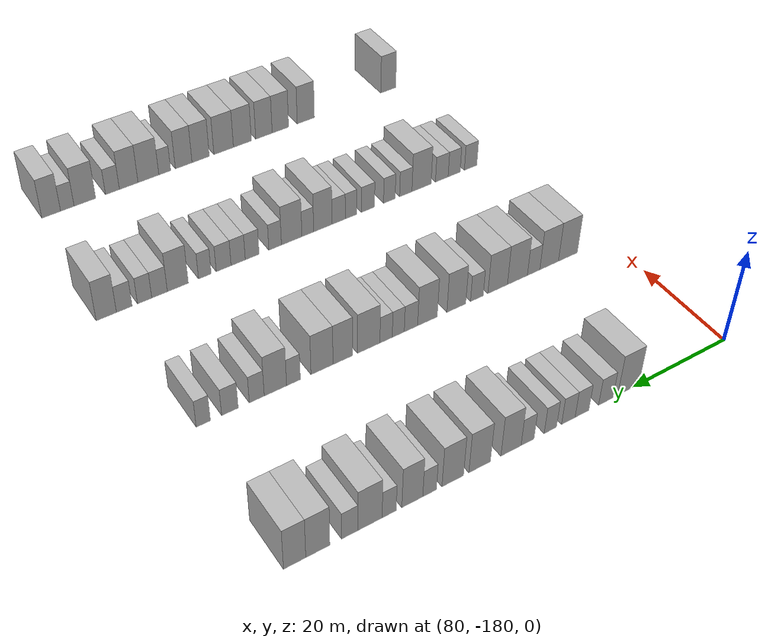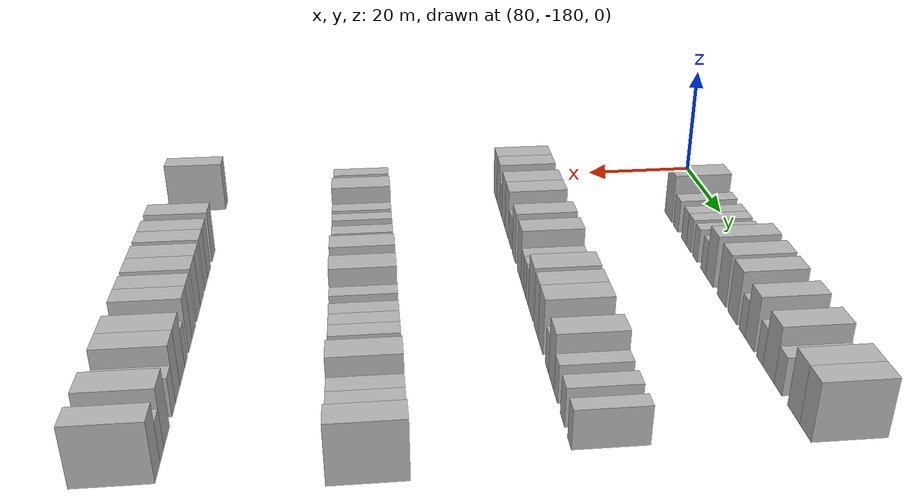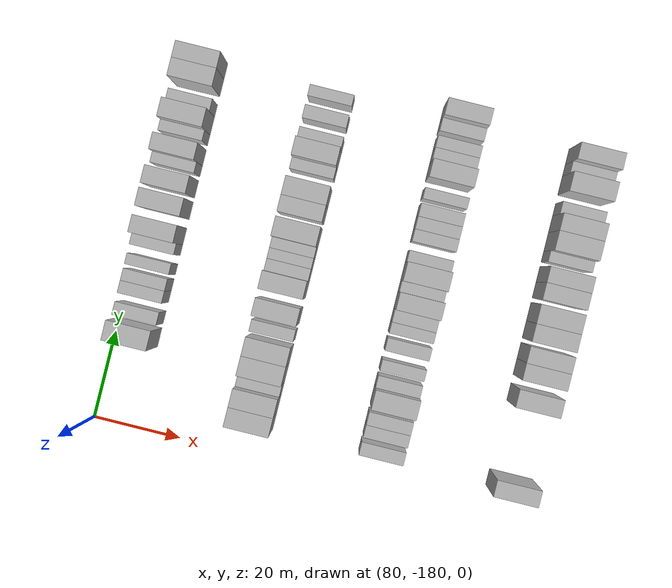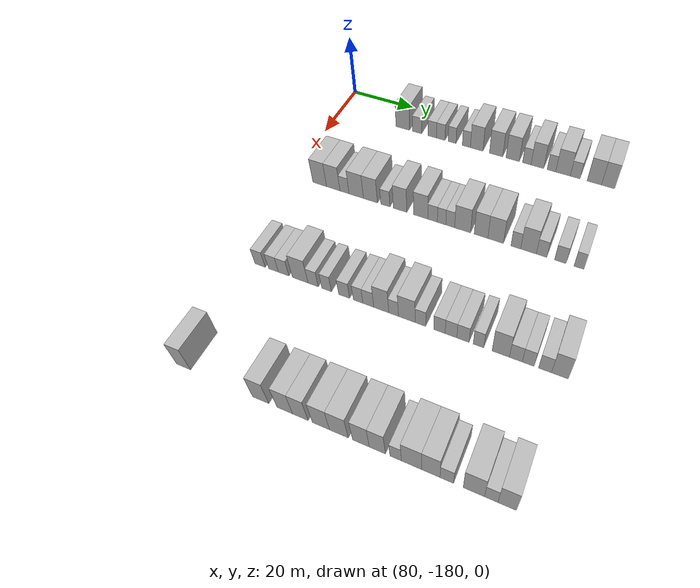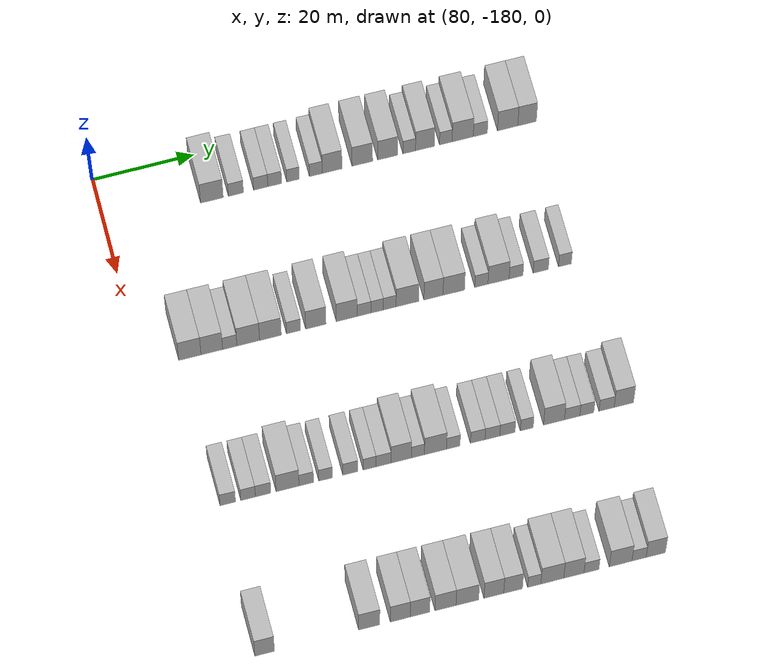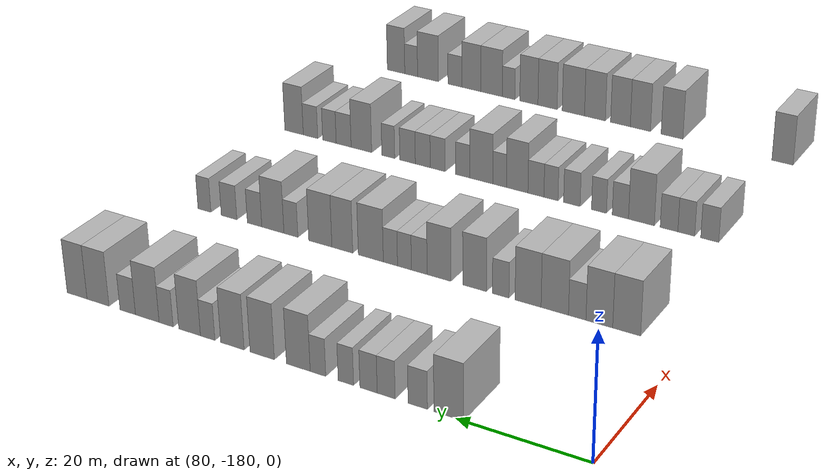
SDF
<sdf version="1.6">
 <world name="default">
  <model name="building_529">
   <static>1</static>
   <pose>85.0000 -158.9531 0 0.000000 0.000000 0.000000</pose>
   <link name="link">
    <pose>0 0 4.50 0 0 0</pose>
    <collision name="collision"><geometry><box><size>10.0000 4.4648 9.0000</size></box></geometry></collision>
    <visual name="visual">
     <cast_shadows>0</cast_shadows>
     <geometry><box><size>10.0000 4.4648 9.0000</size></box></geometry>
     <material>
      <script>
       <uri>model://HANNAS_wall/materials/scripts</uri>
       <uri>model://HANNAS_wall/materials/textures</uri>
       <name>vrc/HANNAS_wall</name>
      </script>
     </material>
    </visual>
   </link>
  </model>
  <model name="building_530">
   <static>1</static>
   <pose>85.0000 -154.2374 0 0.000000 0.000000 0.000000</pose>
   <link name="link">
    <pose>0 0 3.00 0 0 0</pose>
    <collision name="collision"><geometry><box><size>10.0000 2.9667 6.0000</size></box></geometry></collision>
    <visual name="visual">
     <cast_shadows>0</cast_shadows>
     <geometry><box><size>10.0000 2.9667 6.0000</size></box></geometry>
     <material>
      <script>
       <uri>model://HANNAS_wall/materials/scripts</uri>
       <uri>model://HANNAS_wall/materials/textures</uri>
       <name>vrc/HANNAS_wall</name>
      </script>
     </material>
    </visual>
   </link>
  </model>
  <model name="building_531">
   <static>1</static>
   <pose>85.0000 -149.3541 0 0.000000 0.000000 0.000000</pose>
   <link name="link">
    <pose>0 0 3.00 0 0 0</pose>
    <collision name="collision"><geometry><box><size>10.0000 2.7998 6.0000</size></box></geometry></collision>
    <visual name="visual">
     <cast_shadows>0</cast_shadows>
     <geometry><box><size>10.0000 2.7998 6.0000</size></box></geometry>
     <material>
      <script>
       <uri>model://HANNAS_wall/materials/scripts</uri>
       <uri>model://HANNAS_wall/materials/textures</uri>
       <name>vrc/HANNAS_wall</name>
      </script>
     </material>
    </visual>
   </link>
  </model>
  <model name="building_532">
   <static>1</static>
   <pose>85.0000 -146.5910 0 0.000000 0.000000 0.000000</pose>
   <link name="link">
    <pose>0 0 3.00 0 0 0</pose>
    <collision name="collision"><geometry><box><size>10.0000 2.7264 6.0000</size></box></geometry></collision>
    <visual name="visual">
     <cast_shadows>0</cast_shadows>
     <geometry><box><size>10.0000 2.7264 6.0000</size></box></geometry>
     <material>
      <script>
       <uri>model://HANNAS_wall/materials/scripts</uri>
       <uri>model://HANNAS_wall/materials/textures</uri>
       <name>vrc/HANNAS_wall</name>
      </script>
     </material>
    </visual>
   </link>
  </model>
  <model name="building_533">
   <static>1</static>
   <pose>85.0000 -142.9979 0 0.000000 0.000000 0.000000</pose>
   <link name="link">
    <pose>0 0 3.00 0 0 0</pose>
    <collision name="collision"><geometry><box><size>10.0000 2.4598 6.0000</size></box></geometry></collision>
    <visual name="visual">
     <cast_shadows>0</cast_shadows>
     <geometry><box><size>10.0000 2.4598 6.0000</size></box></geometry>
     <material>
      <script>
       <uri>model://HANNAS_wall/materials/scripts</uri>
       <uri>model://HANNAS_wall/materials/textures</uri>
       <name>vrc/HANNAS_wall</name>
      </script>
     </material>
    </visual>
   </link>
  </model>
  <model name="building_534">
   <static>1</static>
   <pose>85.0000 -138.5042 0 0.000000 0.000000 0.000000</pose>
   <link name="link">
    <pose>0 0 3.00 0 0 0</pose>
    <collision name="collision"><geometry><box><size>10.0000 2.5276 6.0000</size></box></geometry></collision>
    <visual name="visual">
     <cast_shadows>0</cast_shadows>
     <geometry><box><size>10.0000 2.5276 6.0000</size></box></geometry>
     <material>
      <script>
       <uri>model://HANNAS_wall/materials/scripts</uri>
       <uri>model://HANNAS_wall/materials/textures</uri>
       <name>vrc/HANNAS_wall</name>
      </script>
     </material>
    </visual>
   </link>
  </model>
  <model name="building_535">
   <static>1</static>
   <pose>85.0000 -135.2942 0 0.000000 0.000000 0.000000</pose>
   <link name="link">
    <pose>0 0 4.50 0 0 0</pose>
    <collision name="collision"><geometry><box><size>10.0000 3.8924 9.0000</size></box></geometry></collision>
    <visual name="visual">
     <cast_shadows>0</cast_shadows>
     <geometry><box><size>10.0000 3.8924 9.0000</size></box></geometry>
     <material>
      <script>
       <uri>model://HANNAS_wall/materials/scripts</uri>
       <uri>model://HANNAS_wall/materials/textures</uri>
       <name>vrc/HANNAS_wall</name>
      </script>
     </material>
    </visual>
   </link>
  </model>
  <model name="building_536">
   <static>1</static>
   <pose>85.0000 -129.3194 0 0.000000 0.000000 0.000000</pose>
   <link name="link">
    <pose>0 0 4.50 0 0 0</pose>
    <collision name="collision"><geometry><box><size>10.0000 4.0571 9.0000</size></box></geometry></collision>
    <visual name="visual">
     <cast_shadows>0</cast_shadows>
     <geometry><box><size>10.0000 4.0571 9.0000</size></box></geometry>
     <material>
      <script>
       <uri>model://HANNAS_wall/materials/scripts</uri>
       <uri>model://HANNAS_wall/materials/textures</uri>
       <name>vrc/HANNAS_wall</name>
      </script>
     </material>
    </visual>
   </link>
  </model>
  <model name="building_537">
   <static>1</static>
   <pose>85.0000 -124.2990 0 0.000000 0.000000 0.000000</pose>
   <link name="link">
    <pose>0 0 4.50 0 0 0</pose>
    <collision name="collision"><geometry><box><size>10.0000 3.9837 9.0000</size></box></geometry></collision>
    <visual name="visual">
     <cast_shadows>0</cast_shadows>
     <geometry><box><size>10.0000 3.9837 9.0000</size></box></geometry>
     <material>
      <script>
       <uri>model://HANNAS_wall/materials/scripts</uri>
       <uri>model://HANNAS_wall/materials/textures</uri>
       <name>vrc/HANNAS_wall</name>
      </script>
     </material>
    </visual>
   </link>
  </model>
  <model name="building_538">
   <static>1</static>
   <pose>85.0000 -120.0617 0 0.000000 0.000000 0.000000</pose>
   <link name="link">
    <pose>0 0 3.00 0 0 0</pose>
    <collision name="collision"><geometry><box><size>10.0000 2.4909 6.0000</size></box></geometry></collision>
    <visual name="visual">
     <cast_shadows>0</cast_shadows>
     <geometry><box><size>10.0000 2.4909 6.0000</size></box></geometry>
     <material>
      <script>
       <uri>model://HANNAS_wall/materials/scripts</uri>
       <uri>model://HANNAS_wall/materials/textures</uri>
       <name>vrc/HANNAS_wall</name>
      </script>
     </material>
    </visual>
   </link>
  </model>
  <model name="building_539">
   <static>1</static>
   <pose>85.0000 -116.9331 0 0.000000 0.000000 0.000000</pose>
   <link name="link">
    <pose>0 0 4.50 0 0 0</pose>
    <collision name="collision"><geometry><box><size>10.0000 3.7665 9.0000</size></box></geometry></collision>
    <visual name="visual">
     <cast_shadows>0</cast_shadows>
     <geometry><box><size>10.0000 3.7665 9.0000</size></box></geometry>
     <material>
      <script>
       <uri>model://HANNAS_wall/materials/scripts</uri>
       <uri>model://HANNAS_wall/materials/textures</uri>
       <name>vrc/HANNAS_wall</name>
      </script>
     </material>
    </visual>
   </link>
  </model>
  <model name="building_540">
   <static>1</static>
   <pose>85.0000 -112.8073 0 0.000000 0.000000 0.000000</pose>
   <link name="link">
    <pose>0 0 3.00 0 0 0</pose>
    <collision name="collision"><geometry><box><size>10.0000 2.4851 6.0000</size></box></geometry></collision>
    <visual name="visual">
     <cast_shadows>0</cast_shadows>
     <geometry><box><size>10.0000 2.4851 6.0000</size></box></geometry>
     <material>
      <script>
       <uri>model://HANNAS_wall/materials/scripts</uri>
       <uri>model://HANNAS_wall/materials/textures</uri>
       <name>vrc/HANNAS_wall</name>
      </script>
     </material>
    </visual>
   </link>
  </model>
  <model name="building_541">
   <static>1</static>
   <pose>85.0000 -109.4571 0 0.000000 0.000000 0.000000</pose>
   <link name="link">
    <pose>0 0 4.50 0 0 0</pose>
    <collision name="collision"><geometry><box><size>10.0000 4.2154 9.0000</size></box></geometry></collision>
    <visual name="visual">
     <cast_shadows>0</cast_shadows>
     <geometry><box><size>10.0000 4.2154 9.0000</size></box></geometry>
     <material>
      <script>
       <uri>model://HANNAS_wall/materials/scripts</uri>
       <uri>model://HANNAS_wall/materials/textures</uri>
       <name>vrc/HANNAS_wall</name>
      </script>
     </material>
    </visual>
   </link>
  </model>
  <model name="building_542">
   <static>1</static>
   <pose>85.0000 -105.9527 0 0.000000 0.000000 0.000000</pose>
   <link name="link">
    <pose>0 0 3.00 0 0 0</pose>
    <collision name="collision"><geometry><box><size>10.0000 2.7935 6.0000</size></box></geometry></collision>
    <visual name="visual">
     <cast_shadows>0</cast_shadows>
     <geometry><box><size>10.0000 2.7935 6.0000</size></box></geometry>
     <material>
      <script>
       <uri>model://HANNAS_wall/materials/scripts</uri>
       <uri>model://HANNAS_wall/materials/textures</uri>
       <name>vrc/HANNAS_wall</name>
      </script>
     </material>
    </visual>
   </link>
  </model>
  <model name="building_543">
   <static>1</static>
   <pose>85.0000 -100.5369 0 0.000000 0.000000 0.000000</pose>
   <link name="link">
    <pose>0 0 4.50 0 0 0</pose>
    <collision name="collision"><geometry><box><size>10.0000 4.0379 9.0000</size></box></geometry></collision>
    <visual name="visual">
     <cast_shadows>0</cast_shadows>
     <geometry><box><size>10.0000 4.0379 9.0000</size></box></geometry>
     <material>
      <script>
       <uri>model://HANNAS_wall/materials/scripts</uri>
       <uri>model://HANNAS_wall/materials/textures</uri>
       <name>vrc/HANNAS_wall</name>
      </script>
     </material>
    </visual>
   </link>
  </model>
  <model name="building_544">
   <static>1</static>
   <pose>85.0000 -96.6738 0 0.000000 0.000000 0.000000</pose>
   <link name="link">
    <pose>0 0 4.50 0 0 0</pose>
    <collision name="collision"><geometry><box><size>10.0000 3.6883 9.0000</size></box></geometry></collision>
    <visual name="visual">
     <cast_shadows>0</cast_shadows>
     <geometry><box><size>10.0000 3.6883 9.0000</size></box></geometry>
     <material>
      <script>
       <uri>model://HANNAS_wall/materials/scripts</uri>
       <uri>model://HANNAS_wall/materials/textures</uri>
       <name>vrc/HANNAS_wall</name>
      </script>
     </material>
    </visual>
   </link>
  </model>
  <model name="building_744">
   <static>1</static>
   <pose>115.0000 -170.7787 0 0.000000 0.000000 0.000000</pose>
   <link name="link">
    <pose>0 0 4.50 0 0 0</pose>
    <collision name="collision"><geometry><box><size>10.0000 4.3260 9.0000</size></box></geometry></collision>
    <visual name="visual">
     <cast_shadows>0</cast_shadows>
     <geometry><box><size>10.0000 4.3260 9.0000</size></box></geometry>
     <material>
      <script>
       <uri>model://HANNAS_wall/materials/scripts</uri>
       <uri>model://HANNAS_wall/materials/textures</uri>
       <name>vrc/HANNAS_wall</name>
      </script>
     </material>
    </visual>
   </link>
  </model>
  <model name="building_745">
   <static>1</static>
   <pose>115.0000 -166.5169 0 0.000000 0.000000 0.000000</pose>
   <link name="link">
    <pose>0 0 4.50 0 0 0</pose>
    <collision name="collision"><geometry><box><size>10.0000 4.1974 9.0000</size></box></geometry></collision>
    <visual name="visual">
     <cast_shadows>0</cast_shadows>
     <geometry><box><size>10.0000 4.1974 9.0000</size></box></geometry>
     <material>
      <script>
       <uri>model://HANNAS_wall/materials/scripts</uri>
       <uri>model://HANNAS_wall/materials/textures</uri>
       <name>vrc/HANNAS_wall</name>
      </script>
     </material>
    </visual>
   </link>
  </model>
  <model name="building_746">
   <static>1</static>
   <pose>115.0000 -163.0311 0 0.000000 0.000000 0.000000</pose>
   <link name="link">
    <pose>0 0 3.00 0 0 0</pose>
    <collision name="collision"><geometry><box><size>10.0000 2.7743 6.0000</size></box></geometry></collision>
    <visual name="visual">
     <cast_shadows>0</cast_shadows>
     <geometry><box><size>10.0000 2.7743 6.0000</size></box></geometry>
     <material>
      <script>
       <uri>model://HANNAS_wall/materials/scripts</uri>
       <uri>model://HANNAS_wall/materials/textures</uri>
       <name>vrc/HANNAS_wall</name>
      </script>
     </material>
    </visual>
   </link>
  </model>
  <model name="building_747">
   <static>1</static>
   <pose>115.0000 -159.4424 0 0.000000 0.000000 0.000000</pose>
   <link name="link">
    <pose>0 0 4.50 0 0 0</pose>
    <collision name="collision"><geometry><box><size>10.0000 4.4031 9.0000</size></box></geometry></collision>
    <visual name="visual">
     <cast_shadows>0</cast_shadows>
     <geometry><box><size>10.0000 4.4031 9.0000</size></box></geometry>
     <material>
      <script>
       <uri>model://HANNAS_wall/materials/scripts</uri>
       <uri>model://HANNAS_wall/materials/textures</uri>
       <name>vrc/HANNAS_wall</name>
      </script>
     </material>
    </visual>
   </link>
  </model>
  <model name="building_748">
   <static>1</static>
   <pose>115.0000 -155.1202 0 0.000000 0.000000 0.000000</pose>
   <link name="link">
    <pose>0 0 4.50 0 0 0</pose>
    <collision name="collision"><geometry><box><size>10.0000 4.2414 9.0000</size></box></geometry></collision>
    <visual name="visual">
     <cast_shadows>0</cast_shadows>
     <geometry><box><size>10.0000 4.2414 9.0000</size></box></geometry>
     <material>
      <script>
       <uri>model://HANNAS_wall/materials/scripts</uri>
       <uri>model://HANNAS_wall/materials/textures</uri>
       <name>vrc/HANNAS_wall</name>
      </script>
     </material>
    </visual>
   </link>
  </model>
  <model name="building_749">
   <static>1</static>
   <pose>115.0000 -150.6361 0 0.000000 0.000000 0.000000</pose>
   <link name="link">
    <pose>0 0 3.00 0 0 0</pose>
    <collision name="collision"><geometry><box><size>10.0000 2.7268 6.0000</size></box></geometry></collision>
    <visual name="visual">
     <cast_shadows>0</cast_shadows>
     <geometry><box><size>10.0000 2.7268 6.0000</size></box></geometry>
     <material>
      <script>
       <uri>model://HANNAS_wall/materials/scripts</uri>
       <uri>model://HANNAS_wall/materials/textures</uri>
       <name>vrc/HANNAS_wall</name>
      </script>
     </material>
    </visual>
   </link>
  </model>
  <model name="building_750">
   <static>1</static>
   <pose>115.0000 -146.2840 0 0.000000 0.000000 0.000000</pose>
   <link name="link">
    <pose>0 0 4.50 0 0 0</pose>
    <collision name="collision"><geometry><box><size>10.0000 3.9774 9.0000</size></box></geometry></collision>
    <visual name="visual">
     <cast_shadows>0</cast_shadows>
     <geometry><box><size>10.0000 3.9774 9.0000</size></box></geometry>
     <material>
      <script>
       <uri>model://HANNAS_wall/materials/scripts</uri>
       <uri>model://HANNAS_wall/materials/textures</uri>
       <name>vrc/HANNAS_wall</name>
      </script>
     </material>
    </visual>
   </link>
  </model>
  <model name="building_751">
   <static>1</static>
   <pose>115.0000 -140.2692 0 0.000000 0.000000 0.000000</pose>
   <link name="link">
    <pose>0 0 4.50 0 0 0</pose>
    <collision name="collision"><geometry><box><size>10.0000 4.0522 9.0000</size></box></geometry></collision>
    <visual name="visual">
     <cast_shadows>0</cast_shadows>
     <geometry><box><size>10.0000 4.0522 9.0000</size></box></geometry>
     <material>
      <script>
       <uri>model://HANNAS_wall/materials/scripts</uri>
       <uri>model://HANNAS_wall/materials/textures</uri>
       <name>vrc/HANNAS_wall</name>
      </script>
     </material>
    </visual>
   </link>
  </model>
  <model name="building_752">
   <static>1</static>
   <pose>115.0000 -136.8821 0 0.000000 0.000000 0.000000</pose>
   <link name="link">
    <pose>0 0 3.00 0 0 0</pose>
    <collision name="collision"><geometry><box><size>10.0000 2.7218 6.0000</size></box></geometry></collision>
    <visual name="visual">
     <cast_shadows>0</cast_shadows>
     <geometry><box><size>10.0000 2.7218 6.0000</size></box></geometry>
     <material>
      <script>
       <uri>model://HANNAS_wall/materials/scripts</uri>
       <uri>model://HANNAS_wall/materials/textures</uri>
       <name>vrc/HANNAS_wall</name>
      </script>
     </material>
    </visual>
   </link>
  </model>
  <model name="building_753">
   <static>1</static>
   <pose>115.0000 -134.3090 0 0.000000 0.000000 0.000000</pose>
   <link name="link">
    <pose>0 0 3.00 0 0 0</pose>
    <collision name="collision"><geometry><box><size>10.0000 2.4244 6.0000</size></box></geometry></collision>
    <visual name="visual">
     <cast_shadows>0</cast_shadows>
     <geometry><box><size>10.0000 2.4244 6.0000</size></box></geometry>
     <material>
      <script>
       <uri>model://HANNAS_wall/materials/scripts</uri>
       <uri>model://HANNAS_wall/materials/textures</uri>
       <name>vrc/HANNAS_wall</name>
      </script>
     </material>
    </visual>
   </link>
  </model>
  <model name="building_754">
   <static>1</static>
   <pose>115.0000 -131.8560 0 0.000000 0.000000 0.000000</pose>
   <link name="link">
    <pose>0 0 3.00 0 0 0</pose>
    <collision name="collision"><geometry><box><size>10.0000 2.4816 6.0000</size></box></geometry></collision>
    <visual name="visual">
     <cast_shadows>0</cast_shadows>
     <geometry><box><size>10.0000 2.4816 6.0000</size></box></geometry>
     <material>
      <script>
       <uri>model://HANNAS_wall/materials/scripts</uri>
       <uri>model://HANNAS_wall/materials/textures</uri>
       <name>vrc/HANNAS_wall</name>
      </script>
     </material>
    </visual>
   </link>
  </model>
  <model name="building_755">
   <static>1</static>
   <pose>115.0000 -128.3996 0 0.000000 0.000000 0.000000</pose>
   <link name="link">
    <pose>0 0 4.50 0 0 0</pose>
    <collision name="collision"><geometry><box><size>10.0000 4.4310 9.0000</size></box></geometry></collision>
    <visual name="visual">
     <cast_shadows>0</cast_shadows>
     <geometry><box><size>10.0000 4.4310 9.0000</size></box></geometry>
     <material>
      <script>
       <uri>model://HANNAS_wall/materials/scripts</uri>
       <uri>model://HANNAS_wall/materials/textures</uri>
       <name>vrc/HANNAS_wall</name>
      </script>
     </material>
    </visual>
   </link>
  </model>
  <model name="building_756">
   <static>1</static>
   <pose>115.0000 -123.3061 0 0.000000 0.000000 0.000000</pose>
   <link name="link">
    <pose>0 0 4.50 0 0 0</pose>
    <collision name="collision"><geometry><box><size>10.0000 3.7559 9.0000</size></box></geometry></collision>
    <visual name="visual">
     <cast_shadows>0</cast_shadows>
     <geometry><box><size>10.0000 3.7559 9.0000</size></box></geometry>
     <material>
      <script>
       <uri>model://HANNAS_wall/materials/scripts</uri>
       <uri>model://HANNAS_wall/materials/textures</uri>
       <name>vrc/HANNAS_wall</name>
      </script>
     </material>
    </visual>
   </link>
  </model>
  <model name="building_757">
   <static>1</static>
   <pose>115.0000 -119.3221 0 0.000000 0.000000 0.000000</pose>
   <link name="link">
    <pose>0 0 4.50 0 0 0</pose>
    <collision name="collision"><geometry><box><size>10.0000 4.2121 9.0000</size></box></geometry></collision>
    <visual name="visual">
     <cast_shadows>0</cast_shadows>
     <geometry><box><size>10.0000 4.2121 9.0000</size></box></geometry>
     <material>
      <script>
       <uri>model://HANNAS_wall/materials/scripts</uri>
       <uri>model://HANNAS_wall/materials/textures</uri>
       <name>vrc/HANNAS_wall</name>
      </script>
     </material>
    </visual>
   </link>
  </model>
  <model name="building_758">
   <static>1</static>
   <pose>115.0000 -113.9204 0 0.000000 0.000000 0.000000</pose>
   <link name="link">
    <pose>0 0 3.00 0 0 0</pose>
    <collision name="collision"><geometry><box><size>10.0000 2.5913 6.0000</size></box></geometry></collision>
    <visual name="visual">
     <cast_shadows>0</cast_shadows>
     <geometry><box><size>10.0000 2.5913 6.0000</size></box></geometry>
     <material>
      <script>
       <uri>model://HANNAS_wall/materials/scripts</uri>
       <uri>model://HANNAS_wall/materials/textures</uri>
       <name>vrc/HANNAS_wall</name>
      </script>
     </material>
    </visual>
   </link>
  </model>
  <model name="building_759">
   <static>1</static>
   <pose>115.0000 -110.5528 0 0.000000 0.000000 0.000000</pose>
   <link name="link">
    <pose>0 0 4.50 0 0 0</pose>
    <collision name="collision"><geometry><box><size>10.0000 4.1439 9.0000</size></box></geometry></collision>
    <visual name="visual">
     <cast_shadows>0</cast_shadows>
     <geometry><box><size>10.0000 4.1439 9.0000</size></box></geometry>
     <material>
      <script>
       <uri>model://HANNAS_wall/materials/scripts</uri>
       <uri>model://HANNAS_wall/materials/textures</uri>
       <name>vrc/HANNAS_wall</name>
      </script>
     </material>
    </visual>
   </link>
  </model>
  <model name="building_760">
   <static>1</static>
   <pose>115.0000 -107.1139 0 0.000000 0.000000 0.000000</pose>
   <link name="link">
    <pose>0 0 3.00 0 0 0</pose>
    <collision name="collision"><geometry><box><size>10.0000 2.7340 6.0000</size></box></geometry></collision>
    <visual name="visual">
     <cast_shadows>0</cast_shadows>
     <geometry><box><size>10.0000 2.7340 6.0000</size></box></geometry>
     <material>
      <script>
       <uri>model://HANNAS_wall/materials/scripts</uri>
       <uri>model://HANNAS_wall/materials/textures</uri>
       <name>vrc/HANNAS_wall</name>
      </script>
     </material>
    </visual>
   </link>
  </model>
  <model name="building_761">
   <static>1</static>
   <pose>115.0000 -102.2560 0 0.000000 0.000000 0.000000</pose>
   <link name="link">
    <pose>0 0 3.00 0 0 0</pose>
    <collision name="collision"><geometry><box><size>10.0000 2.9818 6.0000</size></box></geometry></collision>
    <visual name="visual">
     <cast_shadows>0</cast_shadows>
     <geometry><box><size>10.0000 2.9818 6.0000</size></box></geometry>
     <material>
      <script>
       <uri>model://HANNAS_wall/materials/scripts</uri>
       <uri>model://HANNAS_wall/materials/textures</uri>
       <name>vrc/HANNAS_wall</name>
      </script>
     </material>
    </visual>
   </link>
  </model>
  <model name="building_762">
   <static>1</static>
   <pose>115.0000 -97.5097 0 0.000000 0.000000 0.000000</pose>
   <link name="link">
    <pose>0 0 3.00 0 0 0</pose>
    <collision name="collision"><geometry><box><size>10.0000 2.5108 6.0000</size></box></geometry></collision>
    <visual name="visual">
     <cast_shadows>0</cast_shadows>
     <geometry><box><size>10.0000 2.5108 6.0000</size></box></geometry>
     <material>
      <script>
       <uri>model://HANNAS_wall/materials/scripts</uri>
       <uri>model://HANNAS_wall/materials/textures</uri>
       <name>vrc/HANNAS_wall</name>
      </script>
     </material>
    </visual>
   </link>
  </model>
  <model name="building_985">
   <static>1</static>
   <pose>145.0000 -170.9920 0 0.000000 0.000000 0.000000</pose>
   <link name="link">
    <pose>0 0 3.00 0 0 0</pose>
    <collision name="collision"><geometry><box><size>10.0000 2.9756 6.0000</size></box></geometry></collision>
    <visual name="visual">
     <cast_shadows>0</cast_shadows>
     <geometry><box><size>10.0000 2.9756 6.0000</size></box></geometry>
     <material>
      <script>
       <uri>model://HANNAS_wall/materials/scripts</uri>
       <uri>model://HANNAS_wall/materials/textures</uri>
       <name>vrc/HANNAS_wall</name>
      </script>
     </material>
    </visual>
   </link>
  </model>
  <model name="building_986">
   <static>1</static>
   <pose>145.0000 -167.0946 0 0.000000 0.000000 0.000000</pose>
   <link name="link">
    <pose>0 0 3.00 0 0 0</pose>
    <collision name="collision"><geometry><box><size>10.0000 2.8192 6.0000</size></box></geometry></collision>
    <visual name="visual">
     <cast_shadows>0</cast_shadows>
     <geometry><box><size>10.0000 2.8192 6.0000</size></box></geometry>
     <material>
      <script>
       <uri>model://HANNAS_wall/materials/scripts</uri>
       <uri>model://HANNAS_wall/materials/textures</uri>
       <name>vrc/HANNAS_wall</name>
      </script>
     </material>
    </visual>
   </link>
  </model>
  <model name="building_987">
   <static>1</static>
   <pose>145.0000 -164.1999 0 0.000000 0.000000 0.000000</pose>
   <link name="link">
    <pose>0 0 3.00 0 0 0</pose>
    <collision name="collision"><geometry><box><size>10.0000 2.9701 6.0000</size></box></geometry></collision>
    <visual name="visual">
     <cast_shadows>0</cast_shadows>
     <geometry><box><size>10.0000 2.9701 6.0000</size></box></geometry>
     <material>
      <script>
       <uri>model://HANNAS_wall/materials/scripts</uri>
       <uri>model://HANNAS_wall/materials/textures</uri>
       <name>vrc/HANNAS_wall</name>
      </script>
     </material>
    </visual>
   </link>
  </model>
  <model name="building_988">
   <static>1</static>
   <pose>145.0000 -159.5084 0 0.000000 0.000000 0.000000</pose>
   <link name="link">
    <pose>0 0 4.50 0 0 0</pose>
    <collision name="collision"><geometry><box><size>10.0000 4.4130 9.0000</size></box></geometry></collision>
    <visual name="visual">
     <cast_shadows>0</cast_shadows>
     <geometry><box><size>10.0000 4.4130 9.0000</size></box></geometry>
     <material>
      <script>
       <uri>model://HANNAS_wall/materials/scripts</uri>
       <uri>model://HANNAS_wall/materials/textures</uri>
       <name>vrc/HANNAS_wall</name>
      </script>
     </material>
    </visual>
   </link>
  </model>
  <model name="building_989">
   <static>1</static>
   <pose>145.0000 -155.8990 0 0.000000 0.000000 0.000000</pose>
   <link name="link">
    <pose>0 0 3.00 0 0 0</pose>
    <collision name="collision"><geometry><box><size>10.0000 2.8058 6.0000</size></box></geometry></collision>
    <visual name="visual">
     <cast_shadows>0</cast_shadows>
     <geometry><box><size>10.0000 2.8058 6.0000</size></box></geometry>
     <material>
      <script>
       <uri>model://HANNAS_wall/materials/scripts</uri>
       <uri>model://HANNAS_wall/materials/textures</uri>
       <name>vrc/HANNAS_wall</name>
      </script>
     </material>
    </visual>
   </link>
  </model>
  <model name="building_990">
   <static>1</static>
   <pose>145.0000 -152.1863 0 0.000000 0.000000 0.000000</pose>
   <link name="link">
    <pose>0 0 3.00 0 0 0</pose>
    <collision name="collision"><geometry><box><size>10.0000 2.6195 6.0000</size></box></geometry></collision>
    <visual name="visual">
     <cast_shadows>0</cast_shadows>
     <geometry><box><size>10.0000 2.6195 6.0000</size></box></geometry>
     <material>
      <script>
       <uri>model://HANNAS_wall/materials/scripts</uri>
       <uri>model://HANNAS_wall/materials/textures</uri>
       <name>vrc/HANNAS_wall</name>
      </script>
     </material>
    </visual>
   </link>
  </model>
  <model name="building_991">
   <static>1</static>
   <pose>145.0000 -147.4154 0 0.000000 0.000000 0.000000</pose>
   <link name="link">
    <pose>0 0 3.00 0 0 0</pose>
    <collision name="collision"><geometry><box><size>10.0000 2.9224 6.0000</size></box></geometry></collision>
    <visual name="visual">
     <cast_shadows>0</cast_shadows>
     <geometry><box><size>10.0000 2.9224 6.0000</size></box></geometry>
     <material>
      <script>
       <uri>model://HANNAS_wall/materials/scripts</uri>
       <uri>model://HANNAS_wall/materials/textures</uri>
       <name>vrc/HANNAS_wall</name>
      </script>
     </material>
    </visual>
   </link>
  </model>
  <model name="building_992">
   <static>1</static>
   <pose>145.0000 -143.6935 0 0.000000 0.000000 0.000000</pose>
   <link name="link">
    <pose>0 0 3.00 0 0 0</pose>
    <collision name="collision"><geometry><box><size>10.0000 2.5215 6.0000</size></box></geometry></collision>
    <visual name="visual">
     <cast_shadows>0</cast_shadows>
     <geometry><box><size>10.0000 2.5215 6.0000</size></box></geometry>
     <material>
      <script>
       <uri>model://HANNAS_wall/materials/scripts</uri>
       <uri>model://HANNAS_wall/materials/textures</uri>
       <name>vrc/HANNAS_wall</name>
      </script>
     </material>
    </visual>
   </link>
  </model>
  <model name="building_993">
   <static>1</static>
   <pose>145.0000 -140.9936 0 0.000000 0.000000 0.000000</pose>
   <link name="link">
    <pose>0 0 3.00 0 0 0</pose>
    <collision name="collision"><geometry><box><size>10.0000 2.8783 6.0000</size></box></geometry></collision>
    <visual name="visual">
     <cast_shadows>0</cast_shadows>
     <geometry><box><size>10.0000 2.8783 6.0000</size></box></geometry>
     <material>
      <script>
       <uri>model://HANNAS_wall/materials/scripts</uri>
       <uri>model://HANNAS_wall/materials/textures</uri>
       <name>vrc/HANNAS_wall</name>
      </script>
     </material>
    </visual>
   </link>
  </model>
  <model name="building_994">
   <static>1</static>
   <pose>145.0000 -137.5903 0 0.000000 0.000000 0.000000</pose>
   <link name="link">
    <pose>0 0 4.50 0 0 0</pose>
    <collision name="collision"><geometry><box><size>10.0000 3.9283 9.0000</size></box></geometry></collision>
    <visual name="visual">
     <cast_shadows>0</cast_shadows>
     <geometry><box><size>10.0000 3.9283 9.0000</size></box></geometry>
     <material>
      <script>
       <uri>model://HANNAS_wall/materials/scripts</uri>
       <uri>model://HANNAS_wall/materials/textures</uri>
       <name>vrc/HANNAS_wall</name>
      </script>
     </material>
    </visual>
   </link>
  </model>
  <model name="building_995">
   <static>1</static>
   <pose>145.0000 -134.3747 0 0.000000 0.000000 0.000000</pose>
   <link name="link">
    <pose>0 0 3.00 0 0 0</pose>
    <collision name="collision"><geometry><box><size>10.0000 2.5031 6.0000</size></box></geometry></collision>
    <visual name="visual">
     <cast_shadows>0</cast_shadows>
     <geometry><box><size>10.0000 2.5031 6.0000</size></box></geometry>
     <material>
      <script>
       <uri>model://HANNAS_wall/materials/scripts</uri>
       <uri>model://HANNAS_wall/materials/textures</uri>
       <name>vrc/HANNAS_wall</name>
      </script>
     </material>
    </visual>
   </link>
  </model>
  <model name="building_996">
   <static>1</static>
   <pose>145.0000 -130.9794 0 0.000000 0.000000 0.000000</pose>
   <link name="link">
    <pose>0 0 4.50 0 0 0</pose>
    <collision name="collision"><geometry><box><size>10.0000 4.2873 9.0000</size></box></geometry></collision>
    <visual name="visual">
     <cast_shadows>0</cast_shadows>
     <geometry><box><size>10.0000 4.2873 9.0000</size></box></geometry>
     <material>
      <script>
       <uri>model://HANNAS_wall/materials/scripts</uri>
       <uri>model://HANNAS_wall/materials/textures</uri>
       <name>vrc/HANNAS_wall</name>
      </script>
     </material>
    </visual>
   </link>
  </model>
  <model name="building_997">
   <static>1</static>
   <pose>145.0000 -127.5261 0 0.000000 0.000000 0.000000</pose>
   <link name="link">
    <pose>0 0 3.00 0 0 0</pose>
    <collision name="collision"><geometry><box><size>10.0000 2.6193 6.0000</size></box></geometry></collision>
    <visual name="visual">
     <cast_shadows>0</cast_shadows>
     <geometry><box><size>10.0000 2.6193 6.0000</size></box></geometry>
     <material>
      <script>
       <uri>model://HANNAS_wall/materials/scripts</uri>
       <uri>model://HANNAS_wall/materials/textures</uri>
       <name>vrc/HANNAS_wall</name>
      </script>
     </material>
    </visual>
   </link>
  </model>
  <model name="building_998">
   <static>1</static>
   <pose>145.0000 -122.8004 0 0.000000 0.000000 0.000000</pose>
   <link name="link">
    <pose>0 0 3.00 0 0 0</pose>
    <collision name="collision"><geometry><box><size>10.0000 2.8321 6.0000</size></box></geometry></collision>
    <visual name="visual">
     <cast_shadows>0</cast_shadows>
     <geometry><box><size>10.0000 2.8321 6.0000</size></box></geometry>
     <material>
      <script>
       <uri>model://HANNAS_wall/materials/scripts</uri>
       <uri>model://HANNAS_wall/materials/textures</uri>
       <name>vrc/HANNAS_wall</name>
      </script>
     </material>
    </visual>
   </link>
  </model>
  <model name="building_999">
   <static>1</static>
   <pose>145.0000 -119.9513 0 0.000000 0.000000 0.000000</pose>
   <link name="link">
    <pose>0 0 3.00 0 0 0</pose>
    <collision name="collision"><geometry><box><size>10.0000 2.8661 6.0000</size></box></geometry></collision>
    <visual name="visual">
     <cast_shadows>0</cast_shadows>
     <geometry><box><size>10.0000 2.8661 6.0000</size></box></geometry>
     <material>
      <script>
       <uri>model://HANNAS_wall/materials/scripts</uri>
       <uri>model://HANNAS_wall/materials/textures</uri>
       <name>vrc/HANNAS_wall</name>
      </script>
     </material>
    </visual>
   </link>
  </model>
  <model name="building_1000">
   <static>1</static>
   <pose>145.0000 -117.0296 0 0.000000 0.000000 0.000000</pose>
   <link name="link">
    <pose>0 0 3.00 0 0 0</pose>
    <collision name="collision"><geometry><box><size>10.0000 2.9772 6.0000</size></box></geometry></collision>
    <visual name="visual">
     <cast_shadows>0</cast_shadows>
     <geometry><box><size>10.0000 2.9772 6.0000</size></box></geometry>
     <material>
      <script>
       <uri>model://HANNAS_wall/materials/scripts</uri>
       <uri>model://HANNAS_wall/materials/textures</uri>
       <name>vrc/HANNAS_wall</name>
      </script>
     </material>
    </visual>
   </link>
  </model>
  <model name="building_1001">
   <static>1</static>
   <pose>145.0000 -113.2835 0 0.000000 0.000000 0.000000</pose>
   <link name="link">
    <pose>0 0 3.00 0 0 0</pose>
    <collision name="collision"><geometry><box><size>10.0000 2.5150 6.0000</size></box></geometry></collision>
    <visual name="visual">
     <cast_shadows>0</cast_shadows>
     <geometry><box><size>10.0000 2.5150 6.0000</size></box></geometry>
     <material>
      <script>
       <uri>model://HANNAS_wall/materials/scripts</uri>
       <uri>model://HANNAS_wall/materials/textures</uri>
       <name>vrc/HANNAS_wall</name>
      </script>
     </material>
    </visual>
   </link>
  </model>
  <model name="building_1002">
   <static>1</static>
   <pose>145.0000 -107.9904 0 0.000000 0.000000 0.000000</pose>
   <link name="link">
    <pose>0 0 4.50 0 0 0</pose>
    <collision name="collision"><geometry><box><size>10.0000 4.0714 9.0000</size></box></geometry></collision>
    <visual name="visual">
     <cast_shadows>0</cast_shadows>
     <geometry><box><size>10.0000 4.0714 9.0000</size></box></geometry>
     <material>
      <script>
       <uri>model://HANNAS_wall/materials/scripts</uri>
       <uri>model://HANNAS_wall/materials/textures</uri>
       <name>vrc/HANNAS_wall</name>
      </script>
     </material>
    </visual>
   </link>
  </model>
  <model name="building_1003">
   <static>1</static>
   <pose>145.0000 -104.4604 0 0.000000 0.000000 0.000000</pose>
   <link name="link">
    <pose>0 0 3.00 0 0 0</pose>
    <collision name="collision"><geometry><box><size>10.0000 2.9885 6.0000</size></box></geometry></collision>
    <visual name="visual">
     <cast_shadows>0</cast_shadows>
     <geometry><box><size>10.0000 2.9885 6.0000</size></box></geometry>
     <material>
      <script>
       <uri>model://HANNAS_wall/materials/scripts</uri>
       <uri>model://HANNAS_wall/materials/textures</uri>
       <name>vrc/HANNAS_wall</name>
      </script>
     </material>
    </visual>
   </link>
  </model>
  <model name="building_1004">
   <static>1</static>
   <pose>145.0000 -101.6034 0 0.000000 0.000000 0.000000</pose>
   <link name="link">
    <pose>0 0 3.00 0 0 0</pose>
    <collision name="collision"><geometry><box><size>10.0000 2.7255 6.0000</size></box></geometry></collision>
    <visual name="visual">
     <cast_shadows>0</cast_shadows>
     <geometry><box><size>10.0000 2.7255 6.0000</size></box></geometry>
     <material>
      <script>
       <uri>model://HANNAS_wall/materials/scripts</uri>
       <uri>model://HANNAS_wall/materials/textures</uri>
       <name>vrc/HANNAS_wall</name>
      </script>
     </material>
    </visual>
   </link>
  </model>
  <model name="building_1005">
   <static>1</static>
   <pose>145.0000 -97.7660 0 0.000000 0.000000 0.000000</pose>
   <link name="link">
    <pose>0 0 3.00 0 0 0</pose>
    <collision name="collision"><geometry><box><size>10.0000 2.9491 6.0000</size></box></geometry></collision>
    <visual name="visual">
     <cast_shadows>0</cast_shadows>
     <geometry><box><size>10.0000 2.9491 6.0000</size></box></geometry>
     <material>
      <script>
       <uri>model://HANNAS_wall/materials/scripts</uri>
       <uri>model://HANNAS_wall/materials/textures</uri>
       <name>vrc/HANNAS_wall</name>
      </script>
     </material>
    </visual>
   </link>
  </model>
  <model name="building_1006">
   <static>1</static>
   <pose>145.0000 -94.4036 0 0.000000 0.000000 0.000000</pose>
   <link name="link">
    <pose>0 0 4.50 0 0 0</pose>
    <collision name="collision"><geometry><box><size>10.0000 3.7757 9.0000</size></box></geometry></collision>
    <visual name="visual">
     <cast_shadows>0</cast_shadows>
     <geometry><box><size>10.0000 3.7757 9.0000</size></box></geometry>
     <material>
      <script>
       <uri>model://HANNAS_wall/materials/scripts</uri>
       <uri>model://HANNAS_wall/materials/textures</uri>
       <name>vrc/HANNAS_wall</name>
      </script>
     </material>
    </visual>
   </link>
  </model>
  <model name="building_1218">
   <static>1</static>
   <pose>175.0000 -171.5872 0 0.000000 0.000000 0.000000</pose>
   <link name="link">
    <pose>0 0 4.50 0 0 0</pose>
    <collision name="collision"><geometry><box><size>10.0000 3.7222 9.0000</size></box></geometry></collision>
    <visual name="visual">
     <cast_shadows>0</cast_shadows>
     <geometry><box><size>10.0000 3.7222 9.0000</size></box></geometry>
     <material>
      <script>
       <uri>model://HANNAS_wall/materials/scripts</uri>
       <uri>model://HANNAS_wall/materials/textures</uri>
       <name>vrc/HANNAS_wall</name>
      </script>
     </material>
    </visual>
   </link>
  </model>
  <model name="building_1219">
   <static>1</static>
   <pose>175.0000 -151.6772 0 0.000000 0.000000 0.000000</pose>
   <link name="link">
    <pose>0 0 4.50 0 0 0</pose>
    <collision name="collision"><geometry><box><size>10.0000 4.0326 9.0000</size></box></geometry></collision>
    <visual name="visual">
     <cast_shadows>0</cast_shadows>
     <geometry><box><size>10.0000 4.0326 9.0000</size></box></geometry>
     <material>
      <script>
       <uri>model://HANNAS_wall/materials/scripts</uri>
       <uri>model://HANNAS_wall/materials/textures</uri>
       <name>vrc/HANNAS_wall</name>
      </script>
     </material>
    </visual>
   </link>
  </model>
  <model name="building_1220">
   <static>1</static>
   <pose>175.0000 -145.7652 0 0.000000 0.000000 0.000000</pose>
   <link name="link">
    <pose>0 0 4.50 0 0 0</pose>
    <collision name="collision"><geometry><box><size>10.0000 3.7914 9.0000</size></box></geometry></collision>
    <visual name="visual">
     <cast_shadows>0</cast_shadows>
     <geometry><box><size>10.0000 3.7914 9.0000</size></box></geometry>
     <material>
      <script>
       <uri>model://HANNAS_wall/materials/scripts</uri>
       <uri>model://HANNAS_wall/materials/textures</uri>
       <name>vrc/HANNAS_wall</name>
      </script>
     </material>
    </visual>
   </link>
  </model>
  <model name="building_1221">
   <static>1</static>
   <pose>175.0000 -142.0002 0 0.000000 0.000000 0.000000</pose>
   <link name="link">
    <pose>0 0 4.50 0 0 0</pose>
    <collision name="collision"><geometry><box><size>10.0000 3.7385 9.0000</size></box></geometry></collision>
    <visual name="visual">
     <cast_shadows>0</cast_shadows>
     <geometry><box><size>10.0000 3.7385 9.0000</size></box></geometry>
     <material>
      <script>
       <uri>model://HANNAS_wall/materials/scripts</uri>
       <uri>model://HANNAS_wall/materials/textures</uri>
       <name>vrc/HANNAS_wall</name>
      </script>
     </material>
    </visual>
   </link>
  </model>
  <model name="building_1222">
   <static>1</static>
   <pose>175.0000 -137.1180 0 0.000000 0.000000 0.000000</pose>
   <link name="link">
    <pose>0 0 4.50 0 0 0</pose>
    <collision name="collision"><geometry><box><size>10.0000 4.0261 9.0000</size></box></geometry></collision>
    <visual name="visual">
     <cast_shadows>0</cast_shadows>
     <geometry><box><size>10.0000 4.0261 9.0000</size></box></geometry>
     <material>
      <script>
       <uri>model://HANNAS_wall/materials/scripts</uri>
       <uri>model://HANNAS_wall/materials/textures</uri>
       <name>vrc/HANNAS_wall</name>
      </script>
     </material>
    </visual>
   </link>
  </model>
  <model name="building_1223">
   <static>1</static>
   <pose>175.0000 -132.9353 0 0.000000 0.000000 0.000000</pose>
   <link name="link">
    <pose>0 0 4.50 0 0 0</pose>
    <collision name="collision"><geometry><box><size>10.0000 4.3393 9.0000</size></box></geometry></collision>
    <visual name="visual">
     <cast_shadows>0</cast_shadows>
     <geometry><box><size>10.0000 4.3393 9.0000</size></box></geometry>
     <material>
      <script>
       <uri>model://HANNAS_wall/materials/scripts</uri>
       <uri>model://HANNAS_wall/materials/textures</uri>
       <name>vrc/HANNAS_wall</name>
      </script>
     </material>
    </visual>
   </link>
  </model>
  <model name="building_1224">
   <static>1</static>
   <pose>175.0000 -127.8729 0 0.000000 0.000000 0.000000</pose>
   <link name="link">
    <pose>0 0 4.50 0 0 0</pose>
    <collision name="collision"><geometry><box><size>10.0000 3.7854 9.0000</size></box></geometry></collision>
    <visual name="visual">
     <cast_shadows>0</cast_shadows>
     <geometry><box><size>10.0000 3.7854 9.0000</size></box></geometry>
     <material>
      <script>
       <uri>model://HANNAS_wall/materials/scripts</uri>
       <uri>model://HANNAS_wall/materials/textures</uri>
       <name>vrc/HANNAS_wall</name>
      </script>
     </material>
    </visual>
   </link>
  </model>
  <model name="building_1225">
   <static>1</static>
   <pose>175.0000 -124.1781 0 0.000000 0.000000 0.000000</pose>
   <link name="link">
    <pose>0 0 4.50 0 0 0</pose>
    <collision name="collision"><geometry><box><size>10.0000 3.6043 9.0000</size></box></geometry></collision>
    <visual name="visual">
     <cast_shadows>0</cast_shadows>
     <geometry><box><size>10.0000 3.6043 9.0000</size></box></geometry>
     <material>
      <script>
       <uri>model://HANNAS_wall/materials/scripts</uri>
       <uri>model://HANNAS_wall/materials/textures</uri>
       <name>vrc/HANNAS_wall</name>
      </script>
     </material>
    </visual>
   </link>
  </model>
  <model name="building_1226">
   <static>1</static>
   <pose>175.0000 -120.1112 0 0.000000 0.000000 0.000000</pose>
   <link name="link">
    <pose>0 0 3.00 0 0 0</pose>
    <collision name="collision"><geometry><box><size>10.0000 2.5295 6.0000</size></box></geometry></collision>
    <visual name="visual">
     <cast_shadows>0</cast_shadows>
     <geometry><box><size>10.0000 2.5295 6.0000</size></box></geometry>
     <material>
      <script>
       <uri>model://HANNAS_wall/materials/scripts</uri>
       <uri>model://HANNAS_wall/materials/textures</uri>
       <name>vrc/HANNAS_wall</name>
      </script>
     </material>
    </visual>
   </link>
  </model>
  <model name="building_1227">
   <static>1</static>
   <pose>175.0000 -116.6484 0 0.000000 0.000000 0.000000</pose>
   <link name="link">
    <pose>0 0 4.50 0 0 0</pose>
    <collision name="collision"><geometry><box><size>10.0000 4.3960 9.0000</size></box></geometry></collision>
    <visual name="visual">
     <cast_shadows>0</cast_shadows>
     <geometry><box><size>10.0000 4.3960 9.0000</size></box></geometry>
     <material>
      <script>
       <uri>model://HANNAS_wall/materials/scripts</uri>
       <uri>model://HANNAS_wall/materials/textures</uri>
       <name>vrc/HANNAS_wall</name>
      </script>
     </material>
    </visual>
   </link>
  </model>
  <model name="building_1228">
   <static>1</static>
   <pose>175.0000 -112.5096 0 0.000000 0.000000 0.000000</pose>
   <link name="link">
    <pose>0 0 4.50 0 0 0</pose>
    <collision name="collision"><geometry><box><size>10.0000 3.8817 9.0000</size></box></geometry></collision>
    <visual name="visual">
     <cast_shadows>0</cast_shadows>
     <geometry><box><size>10.0000 3.8817 9.0000</size></box></geometry>
     <material>
      <script>
       <uri>model://HANNAS_wall/materials/scripts</uri>
       <uri>model://HANNAS_wall/materials/textures</uri>
       <name>vrc/HANNAS_wall</name>
      </script>
     </material>
    </visual>
   </link>
  </model>
  <model name="building_1229">
   <static>1</static>
   <pose>175.0000 -109.1321 0 0.000000 0.000000 0.000000</pose>
   <link name="link">
    <pose>0 0 3.00 0 0 0</pose>
    <collision name="collision"><geometry><box><size>10.0000 2.8732 6.0000</size></box></geometry></collision>
    <visual name="visual">
     <cast_shadows>0</cast_shadows>
     <geometry><box><size>10.0000 2.8732 6.0000</size></box></geometry>
     <material>
      <script>
       <uri>model://HANNAS_wall/materials/scripts</uri>
       <uri>model://HANNAS_wall/materials/textures</uri>
       <name>vrc/HANNAS_wall</name>
      </script>
     </material>
    </visual>
   </link>
  </model>
  <model name="building_1230">
   <static>1</static>
   <pose>175.0000 -103.5111 0 0.000000 0.000000 0.000000</pose>
   <link name="link">
    <pose>0 0 4.50 0 0 0</pose>
    <collision name="collision"><geometry><box><size>10.0000 4.3690 9.0000</size></box></geometry></collision>
    <visual name="visual">
     <cast_shadows>0</cast_shadows>
     <geometry><box><size>10.0000 4.3690 9.0000</size></box></geometry>
     <material>
      <script>
       <uri>model://HANNAS_wall/materials/scripts</uri>
       <uri>model://HANNAS_wall/materials/textures</uri>
       <name>vrc/HANNAS_wall</name>
      </script>
     </material>
    </visual>
   </link>
  </model>
  <model name="building_1231">
   <static>1</static>
   <pose>175.0000 -99.9714 0 0.000000 0.000000 0.000000</pose>
   <link name="link">
    <pose>0 0 3.00 0 0 0</pose>
    <collision name="collision"><geometry><box><size>10.0000 2.7103 6.0000</size></box></geometry></collision>
    <visual name="visual">
     <cast_shadows>0</cast_shadows>
     <geometry><box><size>10.0000 2.7103 6.0000</size></box></geometry>
     <material>
      <script>
       <uri>model://HANNAS_wall/materials/scripts</uri>
       <uri>model://HANNAS_wall/materials/textures</uri>
       <name>vrc/HANNAS_wall</name>
      </script>
     </material>
    </visual>
   </link>
  </model>
  <model name="building_1232">
   <static>1</static>
   <pose>175.0000 -96.7560 0 0.000000 0.000000 0.000000</pose>
   <link name="link">
    <pose>0 0 4.50 0 0 0</pose>
    <collision name="collision"><geometry><box><size>10.0000 3.7205 9.0000</size></box></geometry></collision>
    <visual name="visual">
     <cast_shadows>0</cast_shadows>
     <geometry><box><size>10.0000 3.7205 9.0000</size></box></geometry>
     <material>
      <script>
       <uri>model://HANNAS_wall/materials/scripts</uri>
       <uri>model://HANNAS_wall/materials/textures</uri>
       <name>vrc/HANNAS_wall</name>
      </script>
     </material>
    </visual>
   </link>
  </model>
 </world>
</sdf>
